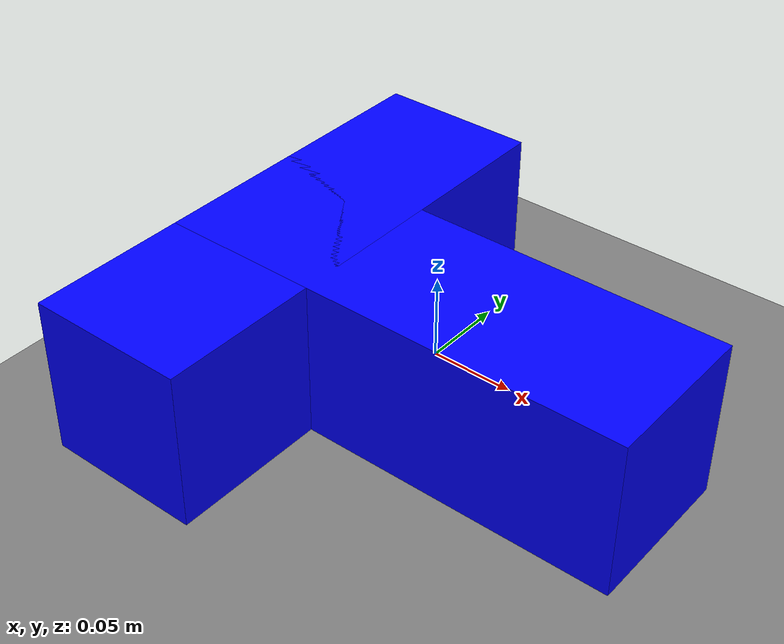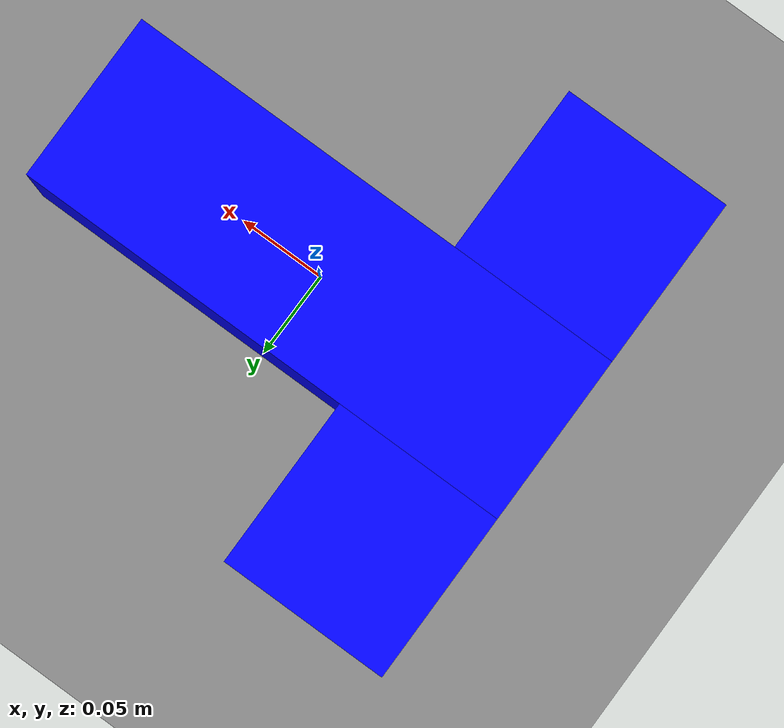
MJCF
<mujoco model="pushT">

    <option timestep="0.01" integrator="Euler" gravity="0 0 0.0" />

    <visual>
        <global offwidth="1024" offheight="1024" />
        <quality shadowsize="2048" />
        <headlight ambient="0.4 0.4 0.4" diffuse="0.6 0.6 0.6" specular="0.1 0.1 0.1" />
    </visual>

    <worldbody>
        <camera name="topdown" pos="0 0 2" quat="1 0 0 0" fovy="45" />
        <light diffuse=".3 .3 .3" pos="1 -1 2" dir="-0.4 0.4 -1" />

        <light diffuse=".5 .5 .5" pos="0 0 3" dir="0 0 -1" />

        <geom name="table" type="plane" pos="0 0.0 -0.07" size="2 2 0.1" contype="0" conaffinity="0"
            rgba="0.5 0.5 0.5 1" />

        <body name="pusher" pos="0.0 0 0.0">
            <geom name="pusher_geom" type="sphere" size="0.05" rgba="0 1 0 1"
                friction="1 0.001 0.0001" mass="1.0" />
            <joint name="pusher_x" type="slide" axis="1 0 0" limited="true" range="-1 1" />
            <joint name="pusher_y" type="slide" axis="0 1 0" limited="true" range="-1 1" />
        </body>

        <body name="slider" pos="0.0 0 0.0">
            <geom name="slider_geoms" type="box" size="0.15 0.05 0.05" rgba="0 0 1 1"
                friction="1 0.1 0.1" mass="0.05" pos="0.0 0 0.0" />
            <geom name="slider_geoms2" type="box" size="0.05 0.15 0.05" rgba="0 0 1 1"
                friction="1 0.1 0.1" mass="0.05" pos="-0.1 0 0.0" />
            <joint name="slider_x" type="slide" axis="1 0 0" limited="true" range="-1 1"
                damping="3.0" />
            <joint name="slider_y" type="slide" axis="0 1 0" limited="true" range="-1 1"
                damping="3.0" />
            <joint name="slider_z_rot" type="hinge" axis="0 0 1" damping="0.03" />
        </body>

        <body name="goal" pos="0.0 0 0.0">
            <geom name="goal_geoms" type="box" size="0.15 0.05 0.05" rgba="1 0 0 0.35"
                density="0.00001" contype="0" conaffinity="0" pos="0.0 0 0.0" />
            <geom name="goal_geoms2" type="box" size="0.05 0.15 0.05" rgba="1 0 0 0.35"
                density="0.00001" contype="0" conaffinity="0" pos="-0.1 0 0.0" />
            <joint name="goal_x" type="slide" axis="1 0 0" limited="true" range="-1 1" />
            <joint name="goal_y" type="slide" axis="0 1 0" limited="true" range="-1 1" />
            <joint name="goal_z_rot" type="hinge" axis="0 0 1" />
        </body>

    </worldbody>

    <actuator>
        <motor name="pusher_x" joint="pusher_x" ctrlrange="-1 1" gear="30" />
        <motor name="pusher_y" joint="pusher_y" ctrlrange="-1 1" gear="30" />
    </actuator>

</mujoco>
